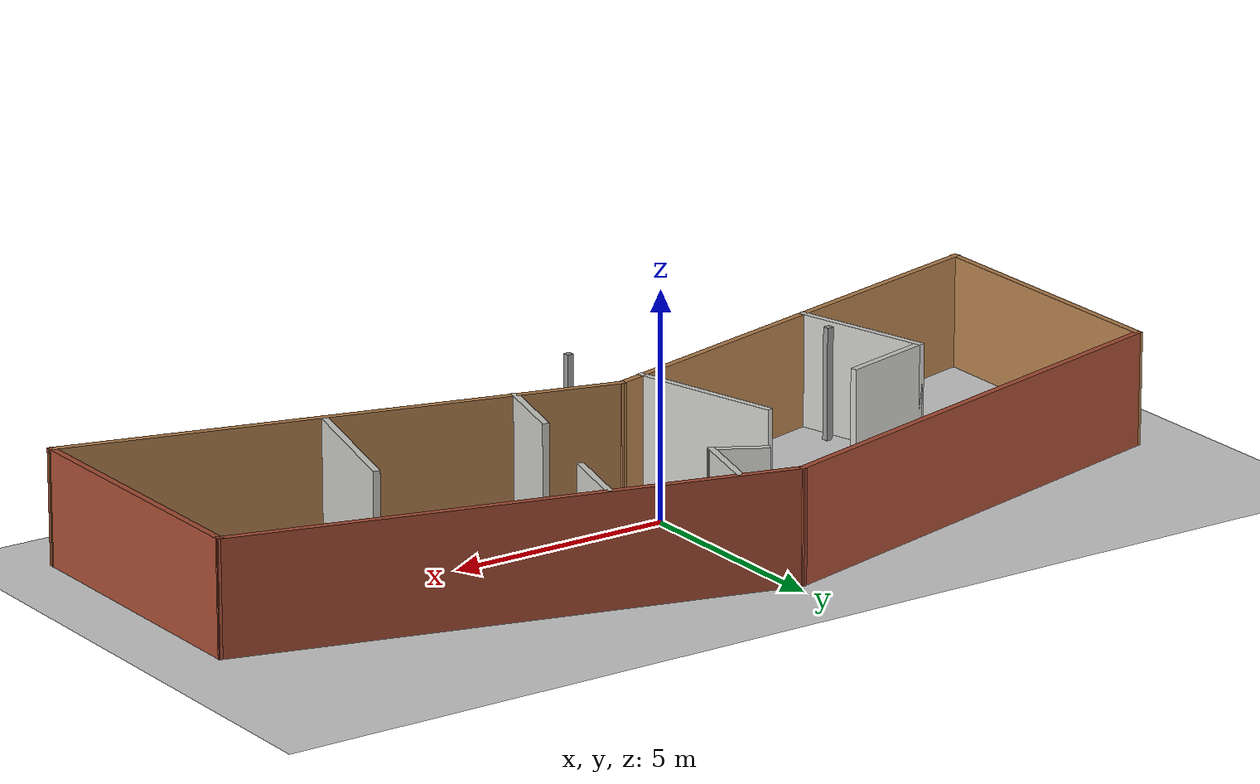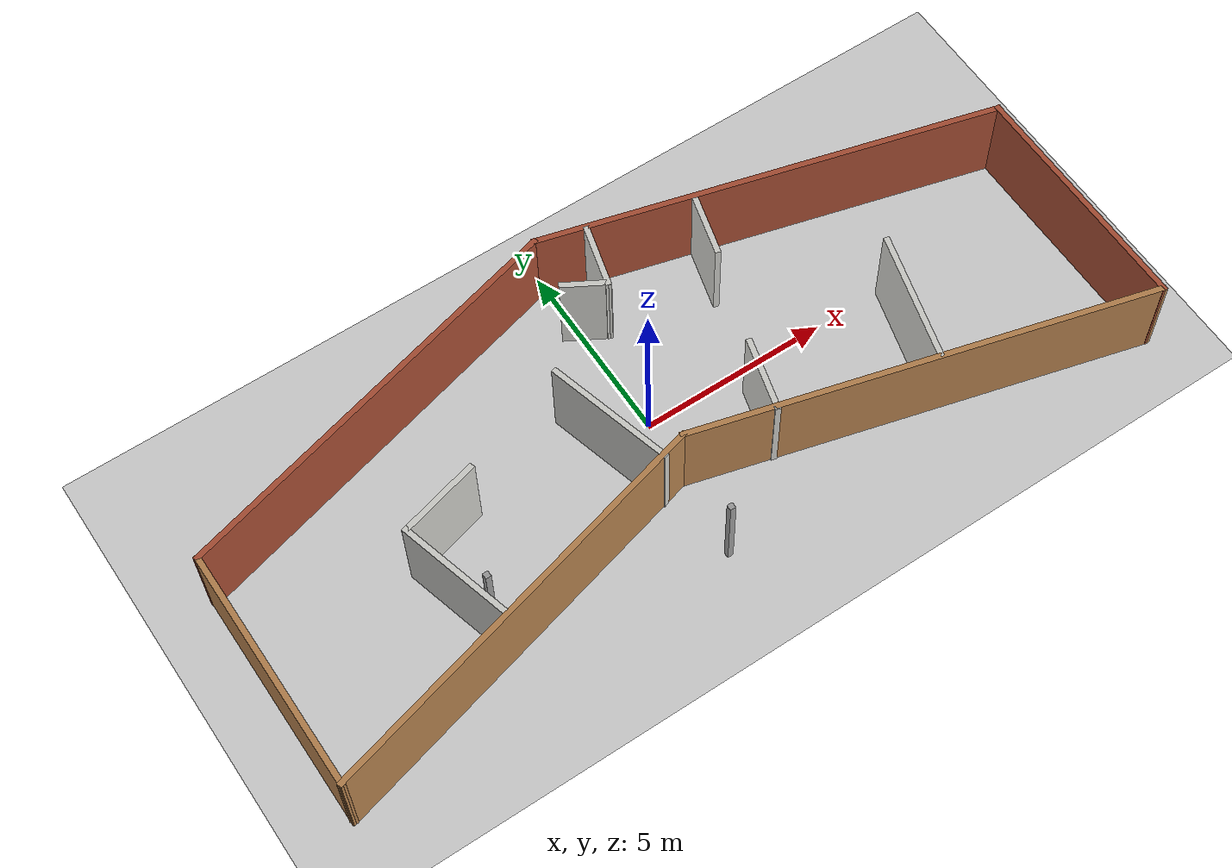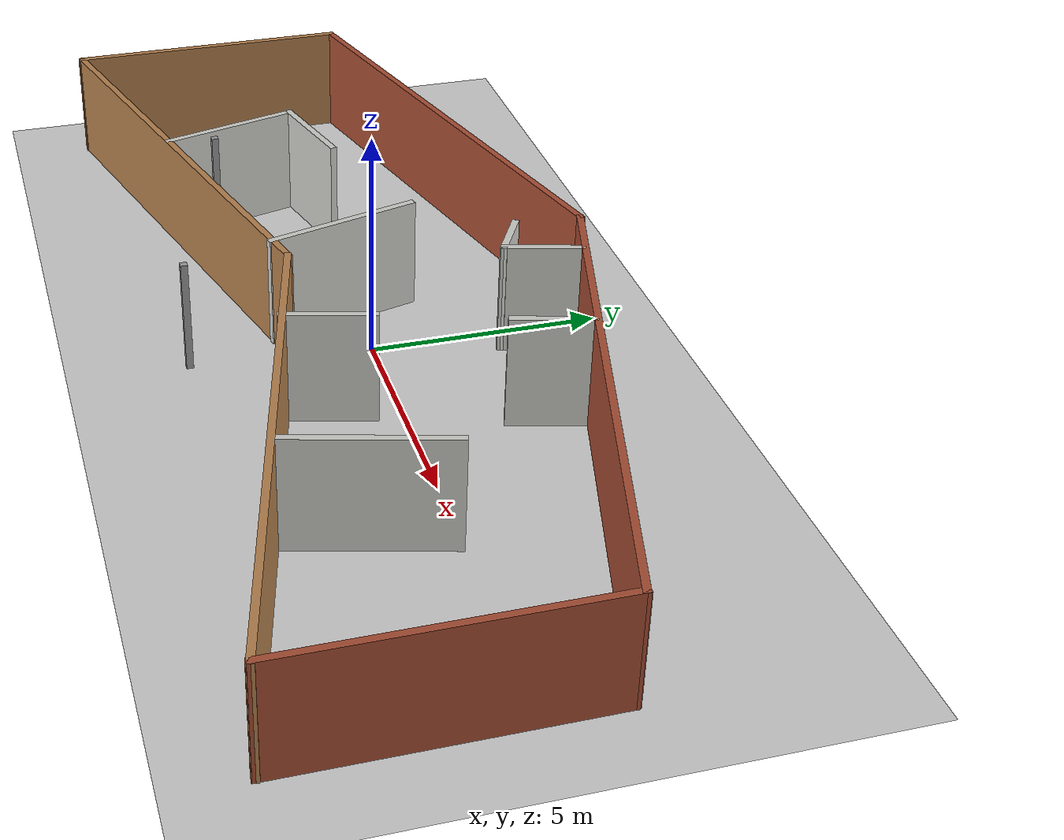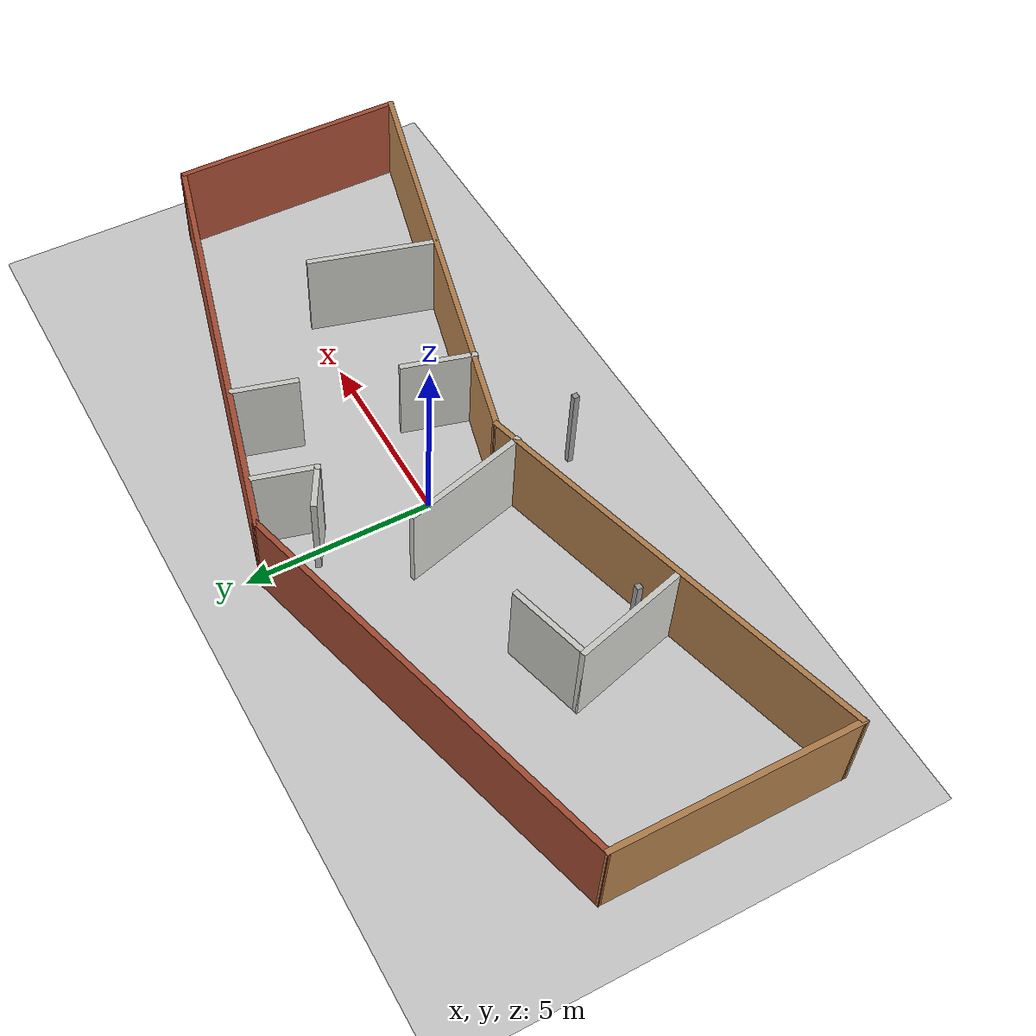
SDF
<sdf version='1.4'>
  <world name='default'>
    <light name='sun' type='directional'>
      <cast_shadows>1</cast_shadows>
      <pose frame=''>0 0 10 0 -0 0</pose>
      <diffuse>0.8 0.8 0.8 1</diffuse>
      <specular>0.1 0.1 0.1 1</specular>
      <attenuation>
        <range>1000</range>
        <constant>0.9</constant>
        <linear>0.01</linear>
        <quadratic>0.001</quadratic>
      </attenuation>
      <direction>-0.5 0.5 -1</direction>
    </light>
    <model name='ground_plane'>
      <static>1</static>
      <link name='link'>
        <collision name='collision'>
          <geometry>
            <plane>
              <normal>0 0 1</normal>
              <size>100 100</size>
            </plane>
          </geometry>
          <surface>
            <friction>
              <ode>
                <mu>100</mu>
                <mu2>50</mu2>
              </ode>
            </friction>
            <contact>
              <ode/>
            </contact>
            <bounce/>
          </surface>
          <max_contacts>10</max_contacts>
        </collision>
        <visual name='visual'>
          <cast_shadows>0</cast_shadows>
          <geometry>
            <plane>
              <normal>0 0 1</normal>
              <size>100 100</size>
            </plane>
          </geometry>
          <material>
            <script>
              <uri>file://media/materials/scripts/gazebo.material</uri>
              <name>Gazebo/Grey</name>
            </script>
          </material>
        </visual>
        <self_collide>0</self_collide>
        <kinematic>0</kinematic>
      </link>
    </model>
    <physics name='default_physics' default='0' type='ode'>
      <real_time_update_rate>0</real_time_update_rate>
    </physics>
    <scene>
      <ambient>0.4 0.4 0.4 1</ambient>
      <background>0.7 0.7 0.7 1</background>
      <shadows>1</shadows>
    </scene>
    <spherical_coordinates>
      <surface_model>EARTH_WGS84</surface_model>
      <latitude_deg>0</latitude_deg>
      <longitude_deg>0</longitude_deg>
      <elevation>0</elevation>
      <heading_deg>0</heading_deg>
    </spherical_coordinates>
    <model name='Maze'>
      <pose frame=''>0.26798 -0.11443 0 0 -0 0</pose>
      <link name='Wall_15'>
        <collision name='Wall_15_Collision'>
          <geometry>
            <box>
              <size>11.25 0.15 2.5</size>
            </box>
          </geometry>
          <pose frame=''>0 0 1.25 0 -0 0</pose>
          <max_contacts>10</max_contacts>
          <surface>
            <contact>
              <ode/>
            </contact>
            <bounce/>
            <friction>
              <ode/>
            </friction>
          </surface>
        </collision>
        <visual name='Wall_15_Visual'>
          <pose frame=''>0 0 1.25 0 -0 0</pose>
          <geometry>
            <box>
              <size>11.25 0.15 2.5</size>
            </box>
          </geometry>
          <material>
            <script>
              <uri>file://media/materials/scripts/gazebo.material</uri>
              <name>Gazebo/Wood</name>
            </script>
            <ambient>1 1 1 1</ambient>
          </material>
        </visual>
        <pose frame=''>-5.84385 -3.04559 0 0 -0 0.261799</pose>
        <self_collide>0</self_collide>
        <kinematic>0</kinematic>
      </link>
      <link name='Wall_16'>
        <collision name='Wall_16_Collision'>
          <geometry>
            <box>
              <size>12.25 0.15 2.5</size>
            </box>
          </geometry>
          <pose frame=''>0 0 1.25 0 -0 0</pose>
          <max_contacts>10</max_contacts>
          <surface>
            <contact>
              <ode/>
            </contact>
            <bounce/>
            <friction>
              <ode/>
            </friction>
          </surface>
        </collision>
        <visual name='Wall_16_Visual'>
          <pose frame=''>0 0 1.25 0 -0 0</pose>
          <geometry>
            <box>
              <size>12.25 0.15 2.5</size>
            </box>
          </geometry>
          <material>
            <script>
              <uri>file://media/materials/scripts/gazebo.material</uri>
              <name>Gazebo/Wood</name>
            </script>
            <ambient>1 1 1 1</ambient>
          </material>
        </visual>
        <pose frame=''>5.36089 -3.175 0 0 0 -0.261799</pose>
        <self_collide>0</self_collide>
        <kinematic>0</kinematic>
      </link>
      <link name='Wall_17'>
        <collision name='Wall_17_Collision'>
          <geometry>
            <box>
              <size>6.5 0.15 2.5</size>
            </box>
          </geometry>
          <pose frame=''>0 0 1.25 0 -0 0</pose>
          <max_contacts>10</max_contacts>
          <surface>
            <contact>
              <ode/>
            </contact>
            <bounce/>
            <friction>
              <ode/>
            </friction>
          </surface>
        </collision>
        <visual name='Wall_17_Visual'>
          <pose frame=''>0 0 1.25 0 -0 0</pose>
          <geometry>
            <box>
              <size>6.5 0.15 2.5</size>
            </box>
          </geometry>
          <material>
            <script>
              <uri>file://media/materials/scripts/gazebo.material</uri>
              <name>Gazebo/Bricks</name>
            </script>
            <ambient>1 1 1 1</ambient>
          </material>
        </visual>
        <pose frame=''>11.2047 -1.56585 0 0 -0 1.5708</pose>
        <self_collide>0</self_collide>
        <kinematic>0</kinematic>
      </link>
      <link name='Wall_18'>
        <collision name='Wall_18_Collision'>
          <geometry>
            <box>
              <size>12.25 0.15 2.5</size>
            </box>
          </geometry>
          <pose frame=''>0 0 1.25 0 -0 0</pose>
          <max_contacts>10</max_contacts>
          <surface>
            <contact>
              <ode/>
            </contact>
            <bounce/>
            <friction>
              <ode/>
            </friction>
          </surface>
        </collision>
        <visual name='Wall_18_Visual'>
          <pose frame=''>0 0 1.25 0 -0 0</pose>
          <geometry>
            <box>
              <size>12.25 0.15 2.5</size>
            </box>
          </geometry>
          <material>
            <script>
              <uri>file://media/materials/scripts/gazebo.material</uri>
              <name>Gazebo/Bricks</name>
            </script>
            <ambient>1 1 1 1</ambient>
          </material>
        </visual>
        <pose frame=''>5.36089 3.175 0 0 -0 2.87979</pose>
        <self_collide>0</self_collide>
        <kinematic>0</kinematic>
      </link>
      <link name='Wall_19'>
        <collision name='Wall_19_Collision'>
          <geometry>
            <box>
              <size>11.25 0.15 2.5</size>
            </box>
          </geometry>
          <pose frame=''>0 0 1.25 0 -0 0</pose>
          <max_contacts>10</max_contacts>
          <surface>
            <contact>
              <ode/>
            </contact>
            <bounce/>
            <friction>
              <ode/>
            </friction>
          </surface>
        </collision>
        <visual name='Wall_19_Visual'>
          <pose frame=''>0 0 1.25 0 -0 0</pose>
          <geometry>
            <box>
              <size>11.25 0.15 2.5</size>
            </box>
          </geometry>
          <material>
            <script>
              <uri>file://media/materials/scripts/gazebo.material</uri>
              <name>Gazebo/Bricks</name>
            </script>
            <ambient>1 1 1 1</ambient>
          </material>
        </visual>
        <pose frame=''>-5.84385 3.30441 0 0 0 -2.87979</pose>
        <self_collide>0</self_collide>
        <kinematic>0</kinematic>
      </link>
      <link name='Wall_20'>
        <collision name='Wall_20_Collision'>
          <geometry>
            <box>
              <size>6.5 0.15 2.5</size>
            </box>
          </geometry>
          <pose frame=''>0 0 1.25 0 -0 0</pose>
          <max_contacts>10</max_contacts>
          <surface>
            <contact>
              <ode/>
            </contact>
            <bounce/>
            <friction>
              <ode/>
            </friction>
          </surface>
        </collision>
        <visual name='Wall_20_Visual'>
          <pose frame=''>0 0 1.25 0 -0 0</pose>
          <geometry>
            <box>
              <size>6.5 0.15 2.5</size>
            </box>
          </geometry>
          <material>
            <script>
              <uri>file://media/materials/scripts/gazebo.material</uri>
              <name>Gazebo/Wood</name>
            </script>
            <ambient>1 1 1 1</ambient>
          </material>
        </visual>
        <pose frame=''>-11.2047 -1.30704 0 0 0 -1.5708</pose>
        <self_collide>0</self_collide>
        <kinematic>0</kinematic>
      </link>
      <link name='Wall_22'>
        <collision name='Wall_22_Collision'>
          <geometry>
            <box>
              <size>3.25 0.15 2.5</size>
            </box>
          </geometry>
          <pose frame=''>0 0 1.25 0 -0 0</pose>
          <max_contacts>10</max_contacts>
          <surface>
            <contact>
              <ode/>
            </contact>
            <bounce/>
            <friction>
              <ode/>
            </friction>
          </surface>
        </collision>
        <visual name='Wall_22_Visual'>
          <pose frame=''>0 0 1.25 0 -0 0</pose>
          <geometry>
            <box>
              <size>3.25 0.15 2.5</size>
            </box>
          </geometry>
          <material>
            <script>
              <uri>file://media/materials/scripts/gazebo.material</uri>
              <name>Gazebo/CeilingTiled</name>
            </script>
            <ambient>1 1 1 1</ambient>
          </material>
        </visual>
        <pose frame=''>-6.59763 -1.63724 0 0 -0 1.8326</pose>
        <self_collide>0</self_collide>
        <kinematic>0</kinematic>
      </link>
      <link name='Wall_23'>
        <collision name='Wall_23_Collision'>
          <geometry>
            <box>
              <size>2.25 0.15 2.5</size>
            </box>
          </geometry>
          <pose frame=''>0 0 1.25 0 -0 0</pose>
          <max_contacts>10</max_contacts>
          <surface>
            <contact>
              <ode/>
            </contact>
            <bounce/>
            <friction>
              <ode/>
            </friction>
          </surface>
        </collision>
        <visual name='Wall_23_Visual'>
          <pose frame=''>0 0 1.25 0 -0 0</pose>
          <geometry>
            <box>
              <size>2.25 0.15 2.5</size>
            </box>
          </geometry>
          <material>
            <script>
              <uri>file://media/materials/scripts/gazebo.material</uri>
              <name>Gazebo/CeilingTiled</name>
            </script>
            <ambient>1 1 1 1</ambient>
          </material>
        </visual>
        <pose frame=''>-5.98458 0.131703 0 0 -0 0.261799</pose>
        <self_collide>0</self_collide>
        <kinematic>0</kinematic>
      </link>
      <link name='Wall_25'>
        <collision name='Wall_25_Collision'>
          <geometry>
            <box>
              <size>3.5 0.15 2.5</size>
            </box>
          </geometry>
          <pose frame=''>0 0 1.25 0 -0 0</pose>
          <max_contacts>10</max_contacts>
          <surface>
            <contact>
              <ode/>
            </contact>
            <bounce/>
            <friction>
              <ode/>
            </friction>
          </surface>
        </collision>
        <visual name='Wall_25_Visual'>
          <pose frame=''>0 0 1.25 0 -0 0</pose>
          <geometry>
            <box>
              <size>3.5 0.15 2.5</size>
            </box>
          </geometry>
          <material>
            <script>
              <uri>file://media/materials/scripts/gazebo.material</uri>
              <name>Gazebo/CeilingTiled</name>
            </script>
            <ambient>1 1 1 1</ambient>
          </material>
        </visual>
        <pose frame=''>-1.56136 -0.189005 0 0 -0 1.8326</pose>
        <self_collide>0</self_collide>
        <kinematic>0</kinematic>
      </link>
      <link name='Wall_27'>
        <collision name='Wall_27_Collision'>
          <geometry>
            <box>
              <size>1.75 0.15 2.5</size>
            </box>
          </geometry>
          <pose frame=''>0 0 1.25 0 -0 0</pose>
          <max_contacts>10</max_contacts>
          <surface>
            <contact>
              <ode/>
            </contact>
            <bounce/>
            <friction>
              <ode/>
            </friction>
          </surface>
        </collision>
        <visual name='Wall_27_Visual'>
          <pose frame=''>0 0 1.25 0 -0 0</pose>
          <geometry>
            <box>
              <size>1.75 0.15 2.5</size>
            </box>
          </geometry>
          <material>
            <script>
              <uri>file://media/materials/scripts/gazebo.material</uri>
              <name>Gazebo/CeilingTiled</name>
            </script>
            <ambient>1 1 1 1</ambient>
          </material>
        </visual>
        <pose frame=''>0.55578 3.55497 0 0 0 -1.8326</pose>
        <self_collide>0</self_collide>
        <kinematic>0</kinematic>
      </link>
      <link name='Wall_28'>
        <collision name='Wall_28_Collision'>
          <geometry>
            <box>
              <size>1.25 0.15 2.5</size>
            </box>
          </geometry>
          <pose frame=''>0 0 1.25 0 -0 0</pose>
          <max_contacts>10</max_contacts>
          <surface>
            <contact>
              <ode/>
            </contact>
            <bounce/>
            <friction>
              <ode/>
            </friction>
          </surface>
        </collision>
        <visual name='Wall_28_Visual'>
          <pose frame=''>0 0 1.25 0 -0 0</pose>
          <geometry>
            <box>
              <size>1.25 0.15 2.5</size>
            </box>
          </geometry>
          <material>
            <script>
              <uri>file://media/materials/scripts/gazebo.material</uri>
              <name>Gazebo/CeilingTiled</name>
            </script>
            <ambient>1 1 1 1</ambient>
          </material>
        </visual>
        <pose frame=''>-0.127589 3.05723 0 0 -0 2.61799</pose>
        <self_collide>0</self_collide>
        <kinematic>0</kinematic>
      </link>
      <link name='Wall_3'>
        <collision name='Wall_3_Collision'>
          <geometry>
            <box>
              <size>0.15 0.15 2.5</size>
            </box>
          </geometry>
          <pose frame=''>0 0 1.25 0 -0 0</pose>
          <max_contacts>10</max_contacts>
          <surface>
            <contact>
              <ode/>
            </contact>
            <bounce/>
            <friction>
              <ode/>
            </friction>
          </surface>
        </collision>
        <visual name='Wall_3_Visual'>
          <pose frame=''>0 0 1.25 0 -0 0</pose>
          <geometry>
            <box>
              <size>0.15 0.15 2.5</size>
            </box>
          </geometry>
          <material>
            <script>
              <uri>file://media/materials/scripts/gazebo.material</uri>
              <name>Gazebo/Grey</name>
            </script>
            <ambient>1 1 1 1</ambient>
          </material>
        </visual>
        <pose frame=''>-0.619085 -3.74502 0 0 -0 0</pose>
        <self_collide>0</self_collide>
        <kinematic>0</kinematic>
      </link>
      <link name='Wall_30'>
        <collision name='Wall_30_Collision'>
          <geometry>
            <box>
              <size>2 0.15 2.5</size>
            </box>
          </geometry>
          <pose frame=''>0 0 1.25 0 -0 0</pose>
          <max_contacts>10</max_contacts>
          <surface>
            <contact>
              <ode/>
            </contact>
            <bounce/>
            <friction>
              <ode/>
            </friction>
          </surface>
        </collision>
        <visual name='Wall_30_Visual'>
          <pose frame=''>0 0 1.25 0 -0 0</pose>
          <geometry>
            <box>
              <size>2 0.15 2.5</size>
            </box>
          </geometry>
          <material>
            <script>
              <uri>file://media/materials/scripts/gazebo.material</uri>
              <name>Gazebo/CeilingTiled</name>
            </script>
            <ambient>1 1 1 1</ambient>
          </material>
        </visual>
        <pose frame=''>1.96769 -1.33584 0 0 -0 1.309</pose>
        <self_collide>0</self_collide>
        <kinematic>0</kinematic>
      </link>
      <link name='Wall_32'>
        <collision name='Wall_32_Collision'>
          <geometry>
            <box>
              <size>1.75 0.15 2.5</size>
            </box>
          </geometry>
          <pose frame=''>0 0 1.25 0 -0 0</pose>
          <max_contacts>10</max_contacts>
          <surface>
            <contact>
              <ode/>
            </contact>
            <bounce/>
            <friction>
              <ode/>
            </friction>
          </surface>
        </collision>
        <visual name='Wall_32_Visual'>
          <pose frame=''>0 0 1.25 0 -0 0</pose>
          <geometry>
            <box>
              <size>1.75 0.15 2.5</size>
            </box>
          </geometry>
          <material>
            <script>
              <uri>file://media/materials/scripts/gazebo.material</uri>
              <name>Gazebo/CeilingTiled</name>
            </script>
            <ambient>1 1 1 1</ambient>
          </material>
        </visual>
        <pose frame=''>3.23088 2.85099 0 0 0 -1.8326</pose>
        <self_collide>0</self_collide>
        <kinematic>0</kinematic>
      </link>
      <link name='Wall_34'>
        <collision name='Wall_34_Collision'>
          <geometry>
            <box>
              <size>3.5 0.15 2.5</size>
            </box>
          </geometry>
          <pose frame=''>0 0 1.25 0 -0 0</pose>
          <max_contacts>10</max_contacts>
          <surface>
            <contact>
              <ode/>
            </contact>
            <bounce/>
            <friction>
              <ode/>
            </friction>
          </surface>
        </collision>
        <visual name='Wall_34_Visual'>
          <pose frame=''>0 0 1.25 0 -0 0</pose>
          <geometry>
            <box>
              <size>3.5 0.15 2.5</size>
            </box>
          </geometry>
          <material>
            <script>
              <uri>file://media/materials/scripts/gazebo.material</uri>
              <name>Gazebo/CeilingTiled</name>
            </script>
            <ambient>1 1 1 1</ambient>
          </material>
        </visual>
        <pose frame=''>6.1443 -1.59695 0 0 -0 1.309</pose>
        <self_collide>0</self_collide>
        <kinematic>0</kinematic>
      </link>
      <link name='Wall_8'>
        <collision name='Wall_8_Collision'>
          <geometry>
            <box>
              <size>0.15 0.15 2.5</size>
            </box>
          </geometry>
          <pose frame=''>0 0 1.25 0 -0 0</pose>
          <max_contacts>10</max_contacts>
          <surface>
            <contact>
              <ode/>
            </contact>
            <bounce/>
            <friction>
              <ode/>
            </friction>
          </surface>
        </collision>
        <visual name='Wall_8_Visual'>
          <pose frame=''>0 0 1.25 0 -0 0</pose>
          <geometry>
            <box>
              <size>0.15 0.15 2.5</size>
            </box>
          </geometry>
          <material>
            <script>
              <uri>file://media/materials/scripts/gazebo.material</uri>
              <name>Gazebo/Grey</name>
            </script>
            <ambient>1 1 1 1</ambient>
          </material>
        </visual>
        <pose frame=''>-6.08621 -2.09793 0 0 -0 0</pose>
        <self_collide>0</self_collide>
        <kinematic>0</kinematic>
      </link>
      <static>1</static>
    </model>
    <gui fullscreen='0'>
      <camera name='user_camera'>
        <pose frame=''>16.8856 -8.24904 12.2043 0.00019 0.249214 2.52968</pose>
        <view_controller>orbit</view_controller>
      </camera>
    </gui>
  </world>
</sdf>
